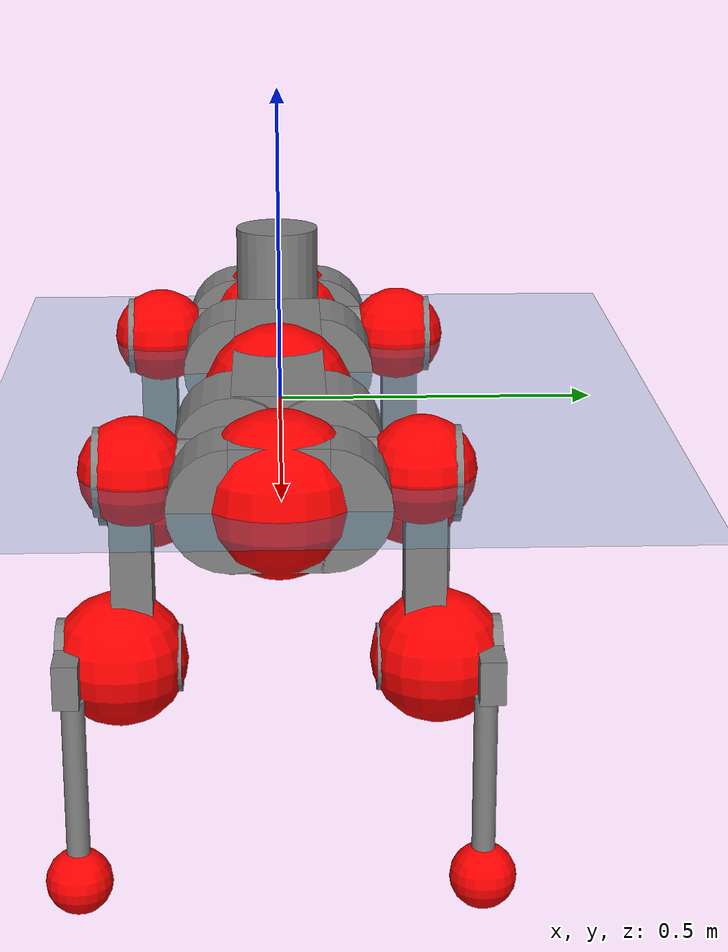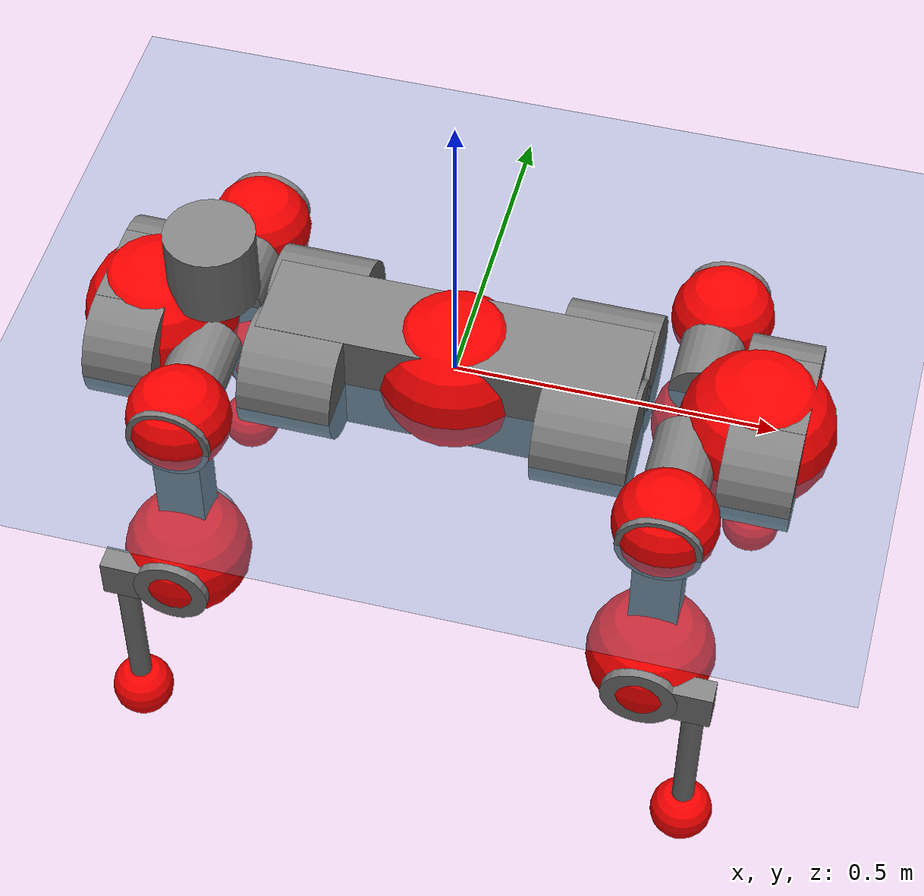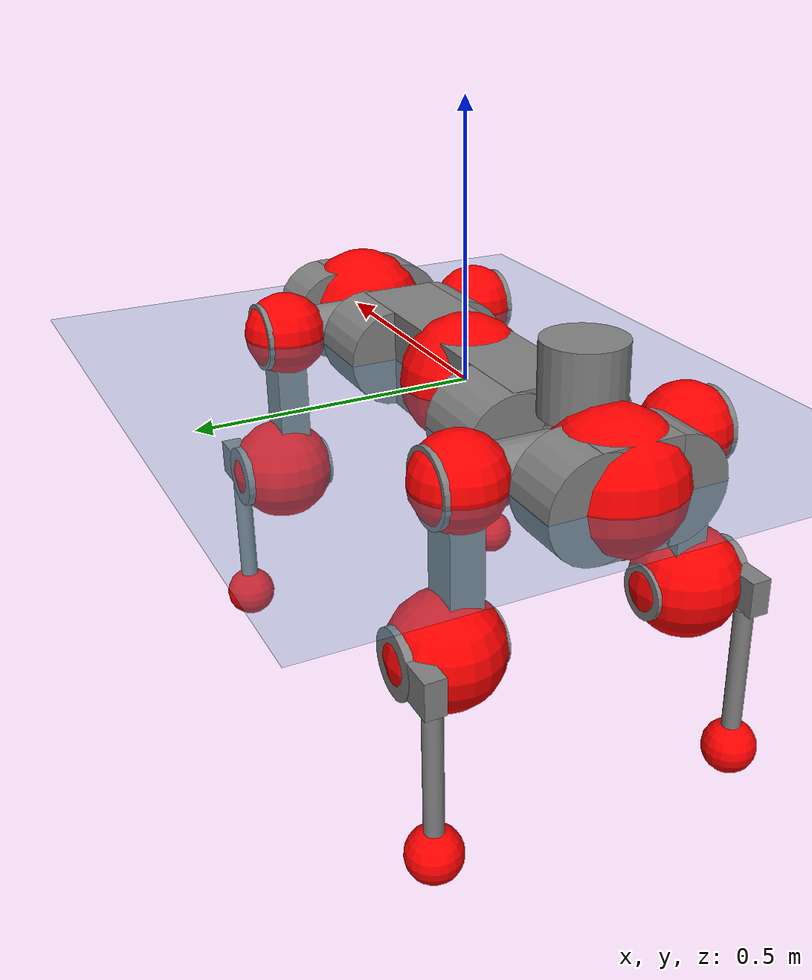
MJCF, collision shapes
<mujoco model="anymal_c">
  <compiler angle="radian" assetdir="assets" balanceinertia="true" inertiafromgeom="false"/>

  <option timestep="0.005" density="1.2" viscosity="2e-05"/>

  <size nkey="1"/>

  <visual>
    <quality shadowsize="8192"/>
    <map shadowclip="0.5"/>
  </visual>

  <default>
    <default class="/">
      <material specular="0" shininess="0.25"/>
      <geom contype="0" conaffinity="0" group="1" solref="-1000 -80"/>
      <site size="0.01 0.005 0.005" group="5"/>
      <general forcelimited="true" forcerange="-80 80" biastype="affine" gainprm="80" biasprm="0 -80 -2"/>
      <default class="anymal_c">
        <joint armature="0.01" damping="0.01" frictionloss="0.1"/>
        <default class="visual">
          <geom type="mesh" group="2"/>
          <default class="visual_zflip"/>
        </default>
        <default class="collision">
          <geom type="cylinder" group="3"/>
          <default class="foot">
            <geom size="0.03 0 0" type="sphere" condim="6" priority="1" friction="0.8 0.02 0.01" solimp="0.015 1 0.03"/>
          </default>
        </default>
      </default>
      <default class="reward_collision_sphere">
        <geom group="5" rgba="1 0 0 1"/>
      </default>
    </default>
  </default>

  <asset>
    <texture type="skybox" colorspace="auto" name="//unnamed_texture_0" builtin="gradient" rgb1="0.95 0.95 0.95" rgb2="0.95 0.95 0.95" width="100" height="600"/>
    <texture type="2d" colorspace="auto" name="texplane" builtin="checker" rgb1="0.345 0.575 0.748" rgb2="0.345 0.575 0.748" markrgb="1 1 1" width="512" height="512"/>
    <texture type="2d" colorspace="linear" name="base" file="base.png"/>
    <texture type="2d" colorspace="linear" name="top_shell" file="top_shell.png"/>
    <texture type="2d" colorspace="linear" name="bottom_shell" file="bottom_shell.png"/>
    <texture type="2d" colorspace="linear" name="remote" file="remote.png"/>
    <texture type="2d" colorspace="linear" name="hatch" file="hatch.png"/>
    <texture type="2d" colorspace="linear" name="handle" file="handle.png"/>
    <texture type="2d" colorspace="linear" name="face" file="face.png"/>
    <texture type="2d" colorspace="linear" name="battery" file="battery.png"/>
    <texture type="2d" colorspace="linear" name="lidar_cage" file="lidar_cage.png"/>
    <texture type="2d" colorspace="linear" name="depth_camera" file="depth_camera.png"/>
    <texture type="2d" colorspace="linear" name="wide_angle_camera" file="wide_angle_camera.png"/>
    <texture type="2d" colorspace="linear" name="lidar" file="lidar.png"/>
    <texture type="2d" colorspace="linear" name="drive" file="drive.png"/>
    <texture type="2d" colorspace="linear" name="hip_l" file="hip_l.png"/>
    <texture type="2d" colorspace="linear" name="shank_l" file="shank_l.png"/>
    <texture type="2d" colorspace="linear" name="foot" file="foot.png"/>
    <texture type="2d" colorspace="linear" name="thigh" file="thigh.png"/>
    <texture type="2d" colorspace="linear" name="shank_r" file="shank_r.png"/>
    <texture type="2d" colorspace="linear" name="hip_r" file="hip_r.png"/>
    <material name="MatPlane" class="/" texture="texplane" texuniform="true" texrepeat="2 2" specular="0.9" shininess="0.5"/>
    <material name="black_plastic" class="/" rgba="0.007 0.007 0.007 1"/>
    <material name="green" class="/" rgba="0.052 0.178 0.033 1"/>
    <material name="red" class="/" rgba="0.178 0.006 0.005 1"/>
    <material name="yellow" class="/" rgba="0.178 0.119 0.006 1"/>
    <material name="lwl" class="/" rgba="0.8 0.8 0.8 1"/>
    <material name="base" class="/" texture="base"/>
    <material name="top_shell" class="/" texture="top_shell"/>
    <material name="bottom_shell" class="/" texture="bottom_shell"/>
    <material name="hip_l" class="/" texture="hip_l"/>
    <material name="thigh" class="/" texture="thigh"/>
    <material name="shank_l" class="/" texture="shank_l"/>
    <material name="foot" class="/" texture="foot"/>
    <material name="hip_r" class="/" texture="hip_r"/>
    <material name="shank" class="/" texture="shank_r"/>
    <material name="hatch" class="/" texture="hatch"/>
    <material name="remote" class="/" texture="remote"/>
    <material name="handle" class="/" texture="handle"/>
    <material name="face" class="/" texture="face"/>
    <material name="depth_camera" class="/" texture="depth_camera"/>
    <material name="wide_angle_camera" class="/" texture="wide_angle_camera"/>
    <material name="battery" class="/" texture="battery"/>
    <material name="lidar_cage" class="/" texture="lidar_cage"/>
    <material name="lidar" class="/" texture="lidar"/>
    <material name="drive" class="/" texture="drive"/>
    <mesh name="base_0" class="/" file="base_0.obj"/>
    <mesh name="base_1" class="/" file="base_1.obj"/>
    <mesh name="base_2" class="/" file="base_2.obj"/>
    <mesh name="base_3" class="/" file="base_3.obj"/>
    <mesh name="base_4" class="/" file="base_4.obj"/>
    <mesh name="base_5" class="/" file="base_5.obj"/>
    <mesh name="top_shell" class="/" file="top_shell.obj"/>
    <mesh name="bottom_shell" class="/" file="bottom_shell.obj"/>
    <mesh name="remote" class="/" file="remote.obj"/>
    <mesh name="handle" class="/" file="handle.obj"/>
    <mesh name="face" class="/" file="face.obj"/>
    <mesh name="wide_angle_camera" class="/" file="wide_angle_camera.obj"/>
    <mesh name="depth_camera" class="/" file="depth_camera.obj"/>
    <mesh name="battery" class="/" file="battery.obj"/>
    <mesh name="lidar_cage" class="/" file="lidar_cage.obj"/>
    <mesh name="lidar" class="/" file="lidar.obj"/>
    <mesh name="drive" class="/" file="drive.obj"/>
    <mesh name="hip_l" class="/" file="hip_l.obj"/>
    <mesh name="thigh" class="/" file="thigh.obj"/>
    <mesh name="shank_l" class="/" file="shank_l.obj"/>
    <mesh name="foot" class="/" file="foot.obj"/>
    <mesh name="hip_r" class="/" file="hip_r.obj"/>
    <mesh name="hatch" class="/" file="hatch.obj"/>
    <mesh name="shank_r" class="/" file="shank_r.obj"/>
  </asset>

  <worldbody>
    <geom name="floor" class="/" size="100 100 0.125" type="plane" group="0" material="MatPlane"/>
    <light name="toplight_shadow" class="/" pos="0 0 5" dir="0.0990148 0.0990148 -0.990148" type="directional" ambient="0.04 0.04 0.04" diffuse="0.55 0.55 0.55" specular="0.12 0.12 0.12"/>
    <light name="toplight_fill" class="/" pos="0 0 5" dir="0.0990148 0.0990148 -0.990148" type="directional" castshadow="false" ambient="0.04 0.04 0.04" diffuse="0.3 0.3 0.3" specular="0.08 0.08 0.08"/>
    <body name="trunk" childclass="anymal_c" pos="-0.000550762 -0.00249432 1.98478e-05" quat="0.999999 -0.000503179 0.000831099 -0.000796081">
      <inertial pos="0.000308514 -0.0023184 0.0529118" quat="0.497028 0.505194 0.504123 0.493561" mass="20.0882" diaginertia="0.770541 0.511583 0.253845"/>
      <joint name="//unnamed_joint_0" type="free" armature="0" damping="0" frictionloss="0"/>
      <geom name="//unnamed_geom_1" class="visual" material="green" mesh="base_0"/>
      <geom name="//unnamed_geom_2" class="visual" material="yellow" mesh="base_1"/>
      <geom name="//unnamed_geom_3" class="visual" material="red" mesh="base_2"/>
      <geom name="//unnamed_geom_4" class="visual" material="black_plastic" mesh="base_3"/>
      <geom name="//unnamed_geom_5" class="visual" material="lwl" mesh="base_4"/>
      <geom name="//unnamed_geom_6" class="visual" material="base" mesh="base_5"/>
      <geom name="trunk_1" class="collision" size="0.294156 0.0710033 0.0912899" type="box"/>
      <geom name="trunk_2" class="collision" size="0.0912899 0.0735391" pos="0.228272 0.06744 0" quat="0.707107 0 0.707107 0"/>
      <geom name="trunk_3" class="collision" size="0.0912899 0.0735391" pos="-0.228272 0.06744 0" quat="0.707107 0 0.707107 0"/>
      <geom name="trunk_4" class="collision" size="0.0912899 0.0735391" pos="0.228272 -0.06744 0" quat="0.707107 0 0.707107 0"/>
      <geom name="trunk_5" class="collision" size="0.0912899 0.0735391" pos="-0.228272 -0.06744 0" quat="0.707107 0 0.707107 0"/>
      <geom name="//unnamed_geom_12" class="visual" material="top_shell" mesh="top_shell"/>
      <geom name="//unnamed_geom_13" class="visual" material="bottom_shell" mesh="bottom_shell"/>
      <geom name="//unnamed_geom_14" class="visual" material="remote" mesh="remote"/>
      <geom name="//unnamed_geom_15" class="visual" material="handle" mesh="handle"/>
      <geom name="//unnamed_geom_16" class="visual" pos="0.435028 0 0" quat="1 0 0 0" material="face" mesh="face"/>
      <geom name="trunk_6" class="collision" size="0.0557883 0.0710033 0.0912899" pos="0.492752 0 0" type="box"/>
      <geom name="//unnamed_geom_18" class="collision" size="0.0912899 0.0557883" pos="0.492752 0.06744 0" quat="0.707107 0 0.707107 0"/>
      <geom name="//unnamed_geom_19" class="collision" size="0.0912899 0.0557883" pos="0.492752 -0.06744 0" quat="0.707107 0 0.707107 0"/>
      <geom name="//unnamed_geom_20" class="visual" pos="0.484513 0 -0.0299292" quat="0.965926 0 0.258819 0" material="depth_camera" mesh="depth_camera"/>
      <geom name="//unnamed_geom_21" class="visual" pos="0.538407 0 0.0154197" material="wide_angle_camera" mesh="wide_angle_camera"/>
      <geom name="//unnamed_geom_22" class="visual_zflip" pos="-0.435028 0 0" quat="0 0 0 1" material="face" mesh="face"/>
      <geom name="trunk_7" class="collision" size="0.0557883 0.0710033 0.0912899" pos="-0.492752 0 0" quat="0 0 0 1" type="box"/>
      <geom name="//unnamed_geom_24" class="collision" size="0.0912899 0.0557883" pos="-0.492752 -0.06744 0" quat="0 -0.707107 0 0.707107"/>
      <geom name="//unnamed_geom_25" class="collision" size="0.0912899 0.0557883" pos="-0.492752 0.06744 0" quat="0 -0.707107 0 0.707107"/>
      <geom name="//unnamed_geom_26" class="visual" pos="-0.484513 0 -0.0299292" quat="0 -0.258819 0 0.965926" material="depth_camera" mesh="depth_camera"/>
      <geom name="//unnamed_geom_27" class="visual_zflip" pos="-0.538407 0 0.0154197" quat="0 0 0 1" material="wide_angle_camera" mesh="wide_angle_camera"/>
      <geom name="//unnamed_geom_28" class="visual" material="battery" mesh="battery"/>
      <geom name="//unnamed_geom_29" class="visual" pos="0 0.0725332 0.0300708" quat="0.683013 -0.183013 0.183013 0.683013" material="depth_camera" mesh="depth_camera"/>
      <geom name="//unnamed_geom_30" class="visual" pos="0 -0.0725332 0.0300708" quat="0.683013 0.183013 0.183013 -0.683013" material="depth_camera" mesh="depth_camera"/>
      <geom name="//unnamed_geom_31" class="visual" pos="-0.382027 0 0.0757082" quat="1 0 0 0" material="lidar_cage" mesh="lidar_cage"/>
      <geom name="trunk_8" class="collision" size="0.0710033 0.06086" pos="-0.382027 0 0.137511"/>
      <geom name="//unnamed_geom_33" class="visual" pos="-0.382027 -3.3825e-05 0.146472" quat="0.707107 0 0 -0.707107" material="lidar" mesh="lidar"/>
      <geom name="//unnamed_geom_34" class="visual" pos="0.314753 0.10022 -1.1491e-09" quat="0.258819 0.965926 0 0" material="drive" mesh="drive"/>
      <geom name="//unnamed_geom_35" class="visual" pos="0.314753 -0.10022 1.1491e-09" quat="0.258819 -0.965926 0 0" material="drive" mesh="drive"/>
      <geom name="//unnamed_geom_36" class="visual" pos="-0.314753 0.10022 1.1491e-09" quat="0 0 0.965926 -0.258819" material="drive" mesh="drive"/>
      <geom name="//unnamed_geom_37" class="visual" pos="-0.314753 -0.10022 -1.1491e-09" quat="0 0 -0.965926 -0.258819" material="drive" mesh="drive"/>
      <geom name="//unnamed_geom_38" class="visual" pos="0.121745 0 0.0751932" quat="1 0 0 0" material="hatch" mesh="hatch"/>
      <geom name="//unnamed_geom_39" class="reward_collision_sphere" size="0.12172"/>
      <geom name="//unnamed_geom_40" class="reward_collision_sphere" size="0.12172" pos="0.472286 0 0"/>
      <geom name="//unnamed_geom_41" class="reward_collision_sphere" size="0.12172" pos="-0.472286 0 0"/>
      <site name="imu" pos="0.265323 0.00697019 0.046681" size="0.0101433"/>
      <camera name="track" pos="0 -1.92686 0" quat="0.707107 0.707107 0 0" mode="trackcom"/>
      <camera name="ego_camera" pos="0.472286 0 -0.0412017" quat="-0.5 -0.5 0.5 0.5"/>
      <body name="LF_HIP" pos="0.314039 0.100576 0.000392255" quat="0.258782 0.965936 2.55957e-05 0.000234461">
        <inertial pos="0.0594762 -0.0172685 -0.00841867" quat="-0.125467 0.711232 -0.126315 0.680038" mass="2.88577" diaginertia="0.00740875 0.00396995 0.00377386"/>
        <joint name="LF_HAA" pos="0 0 0" axis="0.999981 -0.00489008 0.00385022" stiffness="0.00466045" range="-0.753268 0.510848" armature="0.0100703" damping="0.0103891" frictionloss="0.0991646"/>
        <geom name="//unnamed_geom_42" class="visual" pos="0 -6.75965e-05 1.11027e-05" quat="0.258819 -0.965926 0 0" material="hip_l" mesh="hip_l"/>
        <geom name="//unnamed_geom_43" class="visual" pos="0.0628666 -0.0750663 -0.0438323" quat="0.183013 -0.683013 0.683013 0.183013" material="drive" mesh="drive"/>
        <geom name="//unnamed_geom_44" class="collision" size="0.0507166 0.0710033" pos="0.0628666 -0.0115224 -0.00711245" quat="-0.353553 -0.612372 0.612372 -0.353553"/>
        <body name="LF_THIGH" pos="0.0659598 -0.0686045 -0.0431348" quat="0.183965 -0.683178 0.68258 0.183058">
          <inertial pos="0.0319919 0.00225763 -0.25194" quat="0.993613 -0.00385831 -0.0782826 0.0811793" mass="3.29129" diaginertia="0.0373746 0.0256788 0.00486879"/>
          <joint name="LF_HFE" pos="0 0 0" axis="0.999908 -0.00149487 0.013453" stiffness="0.00617459" range="-3.1961 3.08653" armature="0.0112661" damping="0.00203601" frictionloss="0.0915719"/>
          <geom name="//unnamed_geom_45" class="visual" pos="0.00171298 2.69925e-06 0" quat="0.707107 0 0 -0.707107" material="thigh" mesh="thigh"/>
          <geom name="//unnamed_geom_46" class="collision" size="0.0659316 0.0405733" pos="0.041981 0 0" quat="0.5 0.5 -0.5 -0.5"/>
          <geom name="//unnamed_geom_47" class="collision" size="0.0380375 0.03043 0.143339" pos="0.0314858 0 -0.14556" quat="0.707107 0 0 -0.707107" type="box"/>
          <geom name="//unnamed_geom_48" class="visual" pos="0.105267 0 -0.293562" quat="1 0 0 0" material="drive" mesh="drive"/>
          <geom name="//unnamed_geom_49" class="collision" size="0.0507166 0.0710033" pos="0.0318006 0 -0.293562" quat="0.707107 0 0.707107 0"/>
          <geom name="//unnamed_geom_50" class="reward_collision_sphere" size="0.0811466" pos="0.0262381 0 0"/>
          <body name="LF_SHANK" pos="0.104784 -0.000864621 -0.291565" quat="1 -6.82555e-05 -9.65456e-05 0.000381321">
            <inertial pos="0.00298633 -0.061252 -0.0859207" quat="0.992712 -0.117467 -0.0016373 -0.0268652" mass="0.598211" diaginertia="0.0125616 0.00768737 0.00127298"/>
            <joint name="LF_KFE" pos="0 0 0" axis="0.999999 0.00110897 0.000541889" stiffness="0.0034422" range="-3.096 3.19543" armature="0.00911101" damping="0" frictionloss="0.10216"/>
            <geom name="//unnamed_geom_51" class="visual" pos="0.000558565 0.0029783 0" quat="0.707107 0 0 -0.707107" material="shank_l" mesh="shank_l"/>
            <geom name="LF_kfe_act" class="collision" size="0.06086 0.0202867" pos="0.0209905 0 0" quat="0.5 0.5 -0.5 -0.5"/>
            <geom name="//unnamed_geom_53" class="collision" size="0.0583231 0.0342337 0.0192723" pos="0.0209905 -0.0553962 0" quat="0.5 0.5 -0.5 -0.5" type="box"/>
            <geom name="//unnamed_geom_54" class="visual" pos="0.0136962 -0.0837738 -0.348124" quat="0.382683 0 0 -0.92388" material="foot" mesh="foot"/>
            <geom name="LF_calf" class="collision" size="0.0177508 0.143277" pos="0.0136963 -0.0847336 -0.174062" quat="0.707107 0 0 -0.707107"/>
            <geom name="LF_foot" class="foot" size="0.0300548" pos="0.0136963 -0.0847336 -0.324948" quat="0.707107 0 0 -0.707107"/>
            <geom name="//unnamed_geom_57" class="reward_collision_sphere" size="0.101433" pos="-0.0524763 0 0"/>
            <geom name="//unnamed_geom_58" class="reward_collision_sphere" size="0.0507166" pos="0.0136963 -0.0847336 -0.324948"/>
            <site name="LF_foot" class="foot" pos="0.0136963 -0.0847336 -0.324948" quat="0.707107 0 0 -0.707107" size="0.0101433"/>
          </body>
        </body>
      </body>
      <body name="RF_HIP" pos="0.312799 -0.102204 -0.00116612" quat="0.258868 -0.965913 -6.48433e-05 -5.55917e-05">
        <inertial pos="0.060635 0.0160932 -0.00977514" quat="0.139788 0.686741 0.120684 0.703052" mass="2.89732" diaginertia="0.00726389 0.00408511 0.00385752"/>
        <joint name="RF_HAA" pos="0 0 0" axis="0.999926 -0.0110554 -0.00503324" range="-0.505309 0.777976" armature="0.00951516" damping="0.0046759" frictionloss="0.100077"/>
        <geom name="//unnamed_geom_59" class="visual" pos="0 6.7596e-05 1.11026e-05" quat="0.258819 0.965926 0 0" material="hip_r" mesh="hip_r"/>
        <geom name="//unnamed_geom_60" class="visual" pos="0.0628666 0.0750663 -0.0438323" quat="0.183013 0.683013 0.683013 -0.183013" material="drive" mesh="drive"/>
        <geom name="//unnamed_geom_61" class="collision" size="0.0507166 0.0710033" pos="0.0628666 0.0115224 -0.00711245" quat="-0.353553 0.612372 0.612372 0.353553"/>
        <body name="RF_THIGH" pos="0.0623722 0.0705198 -0.0452062" quat="0.182907 0.682766 0.683281 -0.183039">
          <inertial pos="0.0341058 -0.00251996 -0.250327" quat="0.992704 -0.00602693 -0.0797618 0.090223" mass="3.20872" diaginertia="0.0374633 0.0248967 0.00486955"/>
          <joint name="RF_HFE" pos="0 0 0" axis="0.999971 -0.00527486 -0.00553067" stiffness="0.0102516" range="-3.15186 3.1468" armature="0.00887239" damping="0.0245993" frictionloss="0.0898252"/>
          <geom name="//unnamed_geom_62" class="visual" pos="0.00171298 2.69925e-06 0" quat="0.707107 0 0 -0.707107" material="thigh" mesh="thigh"/>
          <geom name="//unnamed_geom_63" class="collision" size="0.0659316 0.0405733" pos="0.041981 0 0" quat="0.5 0.5 0.5 0.5"/>
          <geom name="//unnamed_geom_64" class="collision" size="0.0380375 0.03043 0.143339" pos="0.0314858 0 -0.14556" quat="0.707107 0 0 0.707107" type="box"/>
          <geom name="//unnamed_geom_65" class="visual" pos="0.105267 0 -0.293562" quat="1 0 0 0" material="drive" mesh="drive"/>
          <geom name="//unnamed_geom_66" class="collision" size="0.0507166 0.0710033" pos="0.0318006 0 -0.293562" quat="0.707107 0 0.707107 0"/>
          <geom name="//unnamed_geom_67" class="reward_collision_sphere" size="0.0811466" pos="0.0262381 0 0"/>
          <body name="RF_SHANK" pos="0.105384 0.00170971 -0.291851" quat="1 0.000264485 0.000287831 -0.000214953">
            <inertial pos="0.0036597 0.0614923 -0.0829138" quat="0.992624 0.117882 -0.00480961 0.0279041" mass="0.63222" diaginertia="0.013187 0.00814157 0.00129726"/>
            <joint name="RF_KFE" pos="0 0 0" axis="0.999994 0.00302525 -0.00161333" range="-3.11962 3.12857" armature="0.0106859" damping="0" frictionloss="0.0987688"/>
            <geom name="//unnamed_geom_68" class="visual" pos="0.000558562 -0.00297829 0" quat="0.707107 0 0 0.707107" material="shank" mesh="shank_r"/>
            <geom name="RF_kfe_act" class="collision" size="0.06086 0.0202867" pos="0.0209905 0 0" quat="0.5 0.5 0.5 0.5"/>
            <geom name="//unnamed_geom_70" class="collision" size="0.0583231 0.0342337 0.0192723" pos="0.0209905 0.0553962 0" quat="0.5 0.5 0.5 0.5" type="box"/>
            <geom name="//unnamed_geom_71" class="visual" pos="0.0136964 0.0837738 -0.348124" quat="0.382683 0 0 0.92388" material="foot" mesh="foot"/>
            <geom name="RF_calf" class="collision" size="0.0177508 0.143277" pos="0.0136963 0.0847336 -0.174062" quat="0.707107 0 0 0.707107"/>
            <geom name="RF_foot" class="foot" size="0.0284936" pos="0.0136963 0.0847336 -0.324948" quat="0.707107 0 0 0.707107"/>
            <geom name="//unnamed_geom_74" class="reward_collision_sphere" size="0.101433" pos="-0.0524763 0 0"/>
            <geom name="//unnamed_geom_75" class="reward_collision_sphere" size="0.0507166" pos="0.0136963 0.0847336 -0.324948"/>
            <site name="RF_foot" class="foot" pos="0.0136963 0.0847336 -0.324948" quat="0.707107 0 0 0.707107" size="0.0101433"/>
          </body>
        </body>
      </body>
      <body name="LH_HIP" pos="-0.314251 0.102352 0.00322885" quat="-4.24966e-05 -0.000198785 0.965958 -0.2587">
        <inertial pos="0.0586811 0.0152752 -0.00644116" quat="0.132452 0.68005 0.129803 0.709324" mass="2.79871" diaginertia="0.00748 0.00396668 0.00387555"/>
        <joint name="LH_HAA" pos="0 0 0" axis="0.999998 -0.00152143 0.00116103" stiffness="0.00860286" range="-0.437688 0.717225" armature="0.0105527" damping="0.0095818" frictionloss="0.115497"/>
        <geom name="//unnamed_geom_76" class="visual" pos="0 6.7596e-05 1.11026e-05" quat="-0.258819 -0.965926 0 0" material="hip_r" mesh="hip_r"/>
        <geom name="//unnamed_geom_77" class="visual" pos="0.0628666 0.0750663 -0.0438323" quat="0.183013 0.683013 0.683013 -0.183013" material="drive" mesh="drive"/>
        <geom name="//unnamed_geom_78" class="collision" size="0.0507166 0.0710033" pos="0.0628666 0.0115224 -0.00711245" quat="-0.353553 0.612372 0.612372 0.353553"/>
        <body name="LH_THIGH" pos="0.0622397 0.0689668 -0.0429123" quat="0.183522 0.683129 0.683102 -0.181731">
          <inertial pos="0.0325604 0.0019129 -0.252511" quat="0.991947 -0.00631319 -0.0938152 0.0848484" mass="3.10619" diaginertia="0.0375672 0.0254151 0.00501345"/>
          <joint name="LH_HFE" pos="0 0 0" axis="0.999944 0.00955952 0.00443252" stiffness="0.00237905" range="-3.12047 3.13897" armature="0.0113916" damping="0.0238466" frictionloss="0.0914117"/>
          <geom name="//unnamed_geom_79" class="visual" pos="0.00171298 2.69925e-06 0" quat="0.707107 0 0 -0.707107" material="thigh" mesh="thigh"/>
          <geom name="//unnamed_geom_80" class="collision" size="0.0659316 0.0405733" pos="0.041981 0 0" quat="0.5 0.5 -0.5 -0.5"/>
          <geom name="//unnamed_geom_81" class="collision" size="0.0380375 0.03043 0.143339" pos="0.0314858 0 -0.14556" quat="0.707107 0 0 -0.707107" type="box"/>
          <geom name="//unnamed_geom_82" class="visual" pos="0.105267 0 -0.293562" quat="1 0 0 0" material="drive" mesh="drive"/>
          <geom name="//unnamed_geom_83" class="collision" size="0.0507166 0.0710033" pos="0.0318006 0 -0.293562" quat="0.707107 0 0.707107 0"/>
          <geom name="//unnamed_geom_84" class="reward_collision_sphere" size="0.0811466" pos="0.0262381 0 0"/>
          <body name="LH_SHANK" pos="0.104367 0.00112691 -0.291431" quat="1 -0.000344348 -0.00045316 -0.000323865">
            <inertial pos="0.00599633 0.0617187 -0.0822435" quat="0.992919 0.115667 -0.000209773 0.027068" mass="0.606357" diaginertia="0.012347 0.00731097 0.00123612"/>
            <joint name="LH_KFE" pos="0 0 0" axis="0.99997 -0.00194273 0.0075116" stiffness="0.00926645" range="-3.09559 3.14146" armature="0.0112597" damping="0.0211874" frictionloss="0.0893285"/>
            <geom name="//unnamed_geom_85" class="visual" pos="0.000558562 -0.00297829 0" quat="-0.707107 0 0 -0.707107" material="shank" mesh="shank_r"/>
            <geom name="LH_kfe_act" class="collision" size="0.06086 0.0202867" pos="0.0209905 0 0" quat="0.5 0.5 -0.5 -0.5"/>
            <geom name="//unnamed_geom_87" class="collision" size="0.0583231 0.0342337 0.0192723" pos="0.0209905 0.0553962 0" quat="0.5 0.5 -0.5 -0.5" type="box"/>
            <geom name="//unnamed_geom_88" class="visual" pos="0.0136964 0.0837738 -0.348124" quat="-0.382683 0 0 -0.92388" material="foot" mesh="foot"/>
            <geom name="LH_calf" class="collision" size="0.0177508 0.143277" pos="0.0136963 0.0847336 -0.174062" quat="0.707107 0 0 -0.707107"/>
            <geom name="LH_foot" class="foot" size="0.0301909" pos="0.0136963 0.0847336 -0.324948" quat="0.707107 0 0 -0.707107"/>
            <geom name="//unnamed_geom_91" class="reward_collision_sphere" size="0.101433" pos="-0.0524763 0 0"/>
            <geom name="//unnamed_geom_92" class="reward_collision_sphere" size="0.0507166" pos="0.0136963 0.0847336 -0.324948"/>
            <site name="LH_foot" class="foot" pos="0.0136963 0.0847336 -0.324948" quat="0.707107 0 0 -0.707107" size="0.0101433"/>
          </body>
        </body>
      </body>
      <body name="RH_HIP" pos="-0.316931 -0.0996208 0.00150251" quat="0.000580884 -0.000433499 -0.965703 -0.259648">
        <inertial pos="0.0592934 -0.0147792 -0.00756994" quat="-0.126648 0.711148 -0.135927 0.678051" mass="2.8451" diaginertia="0.00731572 0.00399862 0.00382942"/>
        <joint name="RH_HAA" pos="0 0 0" axis="0.999996 -0.000484049 0.00261133" stiffness="0.00886635" range="-0.705682 0.544266" armature="0.0115003" damping="0.0142785" frictionloss="0.112899"/>
        <geom name="//unnamed_geom_93" class="visual" pos="0 -6.75965e-05 1.11027e-05" quat="-0.258819 0.965926 0 0" material="hip_l" mesh="hip_l"/>
        <geom name="//unnamed_geom_94" class="visual" pos="0.0628666 -0.0750663 -0.0438323" quat="-0.183013 0.683013 -0.683013 -0.183013" material="drive" mesh="drive"/>
        <geom name="//unnamed_geom_95" class="collision" size="0.0507166 0.0710033" pos="0.0628666 -0.0115224 -0.00711245" quat="0.353553 0.612372 -0.612372 0.353553"/>
        <body name="RH_THIGH" pos="0.0601675 -0.0665766 -0.0434569" quat="-0.182871 0.683211 -0.682893 -0.18286">
          <inertial pos="0.0328977 -0.00280719 -0.252547" quat="0.993418 -0.000820876 -0.0774709 0.0843747" mass="3.17101" diaginertia="0.0386105 0.0246568 0.0046615"/>
          <joint name="RH_HFE" pos="0 0 0" axis="0.999999 -0.0012812 0.00108901" stiffness="0.0106255" range="-3.14855 3.18385" armature="0.00893386" damping="0.0218764" frictionloss="0.103816"/>
          <geom name="//unnamed_geom_96" class="visual" pos="0.00171298 2.69925e-06 0" quat="0.707107 0 0 -0.707107" material="thigh" mesh="thigh"/>
          <geom name="//unnamed_geom_97" class="collision" size="0.0659316 0.0405733" pos="0.041981 0 0" quat="0.5 0.5 0.5 0.5"/>
          <geom name="//unnamed_geom_98" class="collision" size="0.0380375 0.03043 0.143339" pos="0.0314858 0 -0.14556" quat="0.707107 0 0 0.707107" type="box"/>
          <geom name="//unnamed_geom_99" class="visual" pos="0.105267 0 -0.293562" quat="1 0 0 0" material="drive" mesh="drive"/>
          <geom name="//unnamed_geom_100" class="collision" size="0.0507166 0.0710033" pos="0.0318006 0 -0.293562" quat="0.707107 0 0.707107 0"/>
          <geom name="//unnamed_geom_101" class="reward_collision_sphere" size="0.0811466" pos="0.0262381 0 0"/>
          <body name="RH_SHANK" pos="0.106828 0.000684837 -0.292501" quat="1 4.55673e-05 6.08877e-05 4.50533e-05">
            <inertial pos="0.00382378 -0.0600544 -0.0832772" quat="0.992925 -0.115816 -0.00158429 -0.026137" mass="0.631071" diaginertia="0.0128607 0.00778838 0.00130634"/>
            <joint name="RH_KFE" pos="0 0 0" axis="0.999971 0.00429582 -0.00621804" range="-3.07633 3.16414" armature="0.0105086" damping="0.0155592" frictionloss="0.111159"/>
            <geom name="//unnamed_geom_102" class="visual" pos="0.000558565 0.0029783 0" quat="0.707107 0 0 -0.707107" material="shank_l" mesh="shank_l"/>
            <geom name="RH_kfe_act" class="collision" size="0.06086 0.0202867" pos="0.0209905 0 0" quat="0.5 0.5 0.5 0.5"/>
            <geom name="//unnamed_geom_104" class="collision" size="0.0583231 0.0342337 0.0192723" pos="0.0209905 -0.0553962 0" quat="0.5 0.5 0.5 0.5" type="box"/>
            <geom name="//unnamed_geom_105" class="visual" pos="0.0136962 -0.0837738 -0.348124" quat="0.382683 0 0 -0.92388" material="foot" mesh="foot"/>
            <geom name="RH_calf" class="collision" size="0.0177508 0.143277" pos="0.0136963 -0.0847336 -0.174062" quat="0.707107 0 0 0.707107"/>
            <geom name="RH_foot" class="foot" size="0.0316694" pos="0.0136963 -0.0847336 -0.324948" quat="0.707107 0 0 0.707107"/>
            <geom name="//unnamed_geom_108" class="reward_collision_sphere" size="0.101433" pos="-0.0524763 0 0"/>
            <geom name="//unnamed_geom_109" class="reward_collision_sphere" size="0.0507166" pos="0.0136963 -0.0847336 -0.324948"/>
            <site name="RH_foot" class="foot" pos="0.0136963 -0.0847336 -0.324948" quat="0.707107 0 0 0.707107" size="0.0101433"/>
          </body>
        </body>
      </body>
    </body>
  </worldbody>

  <contact>
    <pair class="/" geom1="floor" geom2="LF_foot" name="//unnamed_contact_0"/>
    <pair class="/" geom1="floor" geom2="RF_foot" name="//unnamed_contact_1"/>
    <pair class="/" geom1="floor" geom2="LH_foot" name="//unnamed_contact_2"/>
    <pair class="/" geom1="floor" geom2="RH_foot" name="//unnamed_contact_3"/>
  </contact>

  <actuator>
    <general name="LF_HAA" class="/" joint="LF_HAA" forcerange="-87.2359 87.2359" gainprm="81.0942" biasprm="0 -81.0942 -2.10306"/>
    <general name="LF_HFE" class="/" joint="LF_HFE" forcerange="-81.772 81.772" gainprm="81.0942" biasprm="0 -81.0942 -2.10306"/>
    <general name="LF_KFE" class="/" joint="LF_KFE" forcerange="-79.101 79.101" gainprm="81.0942" biasprm="0 -81.0942 -2.10306"/>
    <general name="RF_HAA" class="/" joint="RF_HAA" forcerange="-76.9576 76.9576" gainprm="81.0942" biasprm="0 -81.0942 -2.10306"/>
    <general name="RF_HFE" class="/" joint="RF_HFE" forcerange="-82.3641 82.3641" gainprm="81.0942" biasprm="0 -81.0942 -2.10306"/>
    <general name="RF_KFE" class="/" joint="RF_KFE" forcerange="-73.1601 73.1601" gainprm="81.0942" biasprm="0 -81.0942 -2.10306"/>
    <general name="LH_HAA" class="/" joint="LH_HAA" forcerange="-82.4896 82.4896" gainprm="81.0942" biasprm="0 -81.0942 -2.10306"/>
    <general name="LH_HFE" class="/" joint="LH_HFE" forcerange="-82.2694 82.2694" gainprm="81.0942" biasprm="0 -81.0942 -2.10306"/>
    <general name="LH_KFE" class="/" joint="LH_KFE" forcerange="-82.7289 82.7289" gainprm="81.0942" biasprm="0 -81.0942 -2.10306"/>
    <general name="RH_HAA" class="/" joint="RH_HAA" forcerange="-77.8418 77.8418" gainprm="81.0942" biasprm="0 -81.0942 -2.10306"/>
    <general name="RH_HFE" class="/" joint="RH_HFE" forcerange="-83.6267 83.6267" gainprm="81.0942" biasprm="0 -81.0942 -2.10306"/>
    <general name="RH_KFE" class="/" joint="RH_KFE" forcerange="-89.6813 89.6813" gainprm="81.0942" biasprm="0 -81.0942 -2.10306"/>
  </actuator>

  <sensor>
    <gyro site="imu" name="imu_angular_velocity"/>
    <velocimeter site="imu" name="imu_linear_velocity"/>
    <framelinvel objtype="site" objname="LF_foot" name="LF_foot_global_linear_velocity"/>
    <framelinvel objtype="site" objname="RF_foot" name="RF_foot_global_linear_velocity"/>
    <framelinvel objtype="site" objname="LH_foot" name="LH_foot_global_linear_velocity"/>
    <framelinvel objtype="site" objname="RH_foot" name="RH_foot_global_linear_velocity"/>
  </sensor>

  <keyframe>
    <key name="home" qpos="0 0 0.55 1 0 0 0 0 0.4 -0.8 0 -0.4 0.8 0 -0.4 0.8 0 0.4 -0.8"/>
  </keyframe>
</mujoco>
